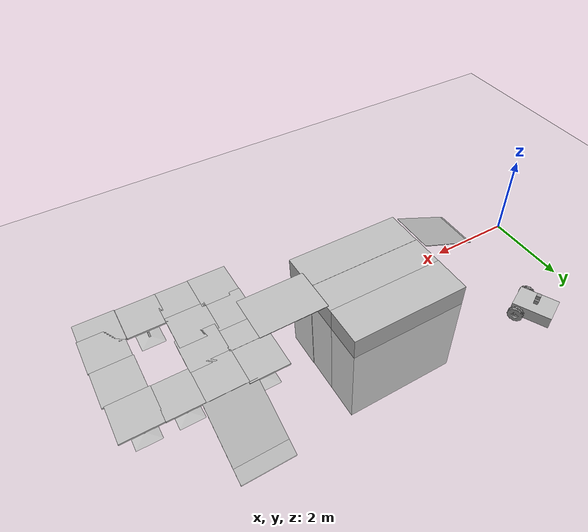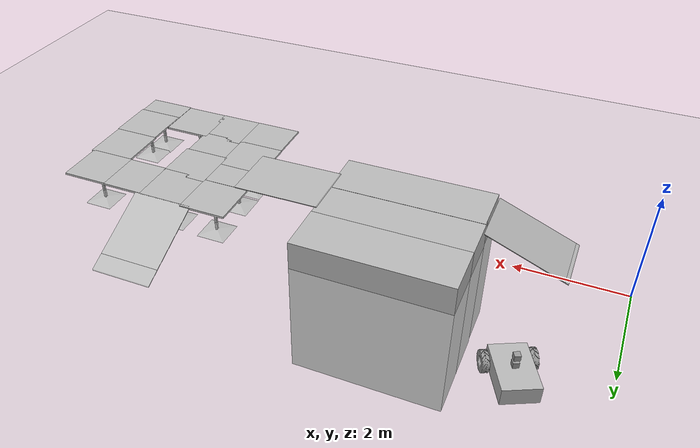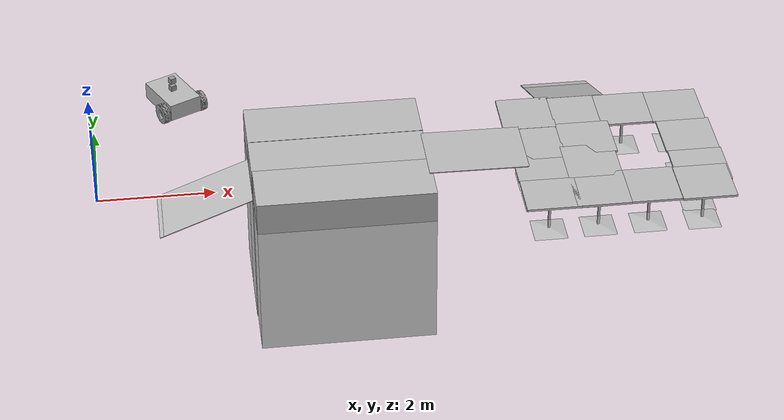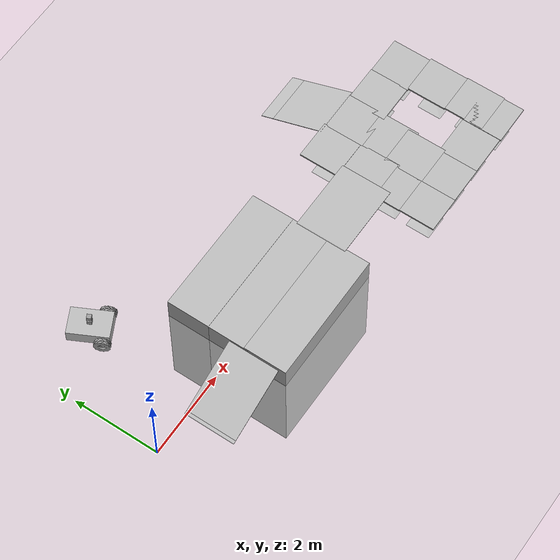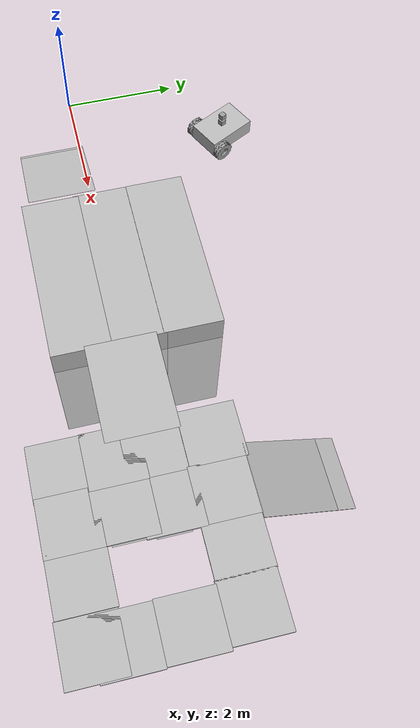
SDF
<sdf version="1.6">
 <world name="default">
  <model name="ground_plane">
   <static>1</static>
   <link name="link">
    <collision name="collision">
     <geometry><plane><normal>0 0 1</normal><size>100 100</size></plane></geometry>
     <surface>
      <contact><collide_bitmask>65535</collide_bitmask></contact>
      <friction><ode><mu>100</mu><mu2>50</mu2></ode></friction>
     </surface>
    </collision>
    <visual name="visual">
     <cast_shadows>0</cast_shadows>
     <geometry><plane><normal>0 0 1</normal><size>100 100</size></plane></geometry>
     <material>
      <script><uri>file://media/materials/scripts/gazebo.material</uri><name>Gazebo/Grey</name></script>
     </material>
    </visual>
   </link>
  </model>
  <light name="sun" type="directional">
   <pose>0 0 10 0 -0 0</pose>
   <diffuse>0.8 0.8 0.8 1</diffuse>
   <specular>0.2 0.2 0.2 1</specular>
   <attenuation>
    <range>1000</range>
    <constant>0.9</constant>
    <linear>0.01</linear>
    <quadratic>0.001</quadratic>
   </attenuation>
   <direction>-0.5 0.1 -0.9</direction>
  </light>
  <model name="bowser2">
   <pose>1.42905 2.6701 0.226477 7e-06 -0.004236 -1.10502</pose>
   <static>0</static>
   <link name="base_link">
    <inertial>
     <mass>10</mass>
     <inertia><ixx>0.3735</ixx><ixy>0</ixy><ixz>0</ixz><iyy>0.747</iyy><iyz>0</iyz><izz>0.9711</izz></inertia>
    </inertial>
    <collision name="collision"><geometry><box><size>0.9 0.6 0.3</size></box></geometry></collision>
    <visual name="visual"><geometry><box><size>0.9 0.6 0.3</size></box></geometry></visual>
    <collision name="caster_collision">
     <pose>-0.35 0 -0.15 0 -0 0</pose>
     <geometry><sphere><radius>0.075</radius></sphere></geometry>
     <surface><friction><ode><mu>0</mu><mu2>0</mu2><slip1>1</slip1><slip2>1</slip2></ode></friction></surface>
    </collision>
    <visual name="caster_visual">
     <pose>-0.35 0 -0.15 0 -0 0</pose>
     <geometry><sphere><radius>0.075</radius></sphere></geometry>
    </visual>
   </link>
   <link name="front_right_wheel">
    <pose>0.3 -0.37 -0.05 0 -0 0</pose>
    <inertial>
     <mass>2.6357</mass>
     <inertia>
      <ixx>0.0246688</ixx>
      <ixy>0</ixy>
      <ixz>0</ixz>
      <iyy>0.0246688</iyy>
      <iyz>0</iyz>
      <izz>0.0441058</izz>
     </inertia>
    </inertial>
    <collision name="front_right_wheel_collision">
     <pose>0 0 0 -1.5707 0 0</pose>
     <geometry><cylinder><radius>0.17775</radius><length>0.1143</length></cylinder></geometry>
     <surface>
      <friction><ode><mu>100000</mu><mu2>100000</mu2><slip1>0</slip1><slip2>0</slip2></ode></friction>
     </surface>
    </collision>
    <visual name="front_right_wheel">
     <pose>0 0 0 -3.14159 0 0</pose>
     <geometry><mesh><uri>model://husky/meshes/wheel.stl</uri></mesh></geometry>
     <material><script><name>Gazebo/Grey</name><uri>__default__</uri></script></material>
    </visual>
   </link>
   <joint name="front_right_joint" type="revolute">
    <parent>base_link</parent>
    <child>front_right_wheel</child>
    <axis>
     <xyz>0 1 0</xyz>
     <use_parent_model_frame>1</use_parent_model_frame>
     <limit><lower>-1e+16</lower><upper>1e+16</upper></limit>
     <dynamics><spring_reference>0</spring_reference><spring_stiffness>0</spring_stiffness></dynamics>
    </axis>
    <physics><ode><limit><cfm>0</cfm><erp>0.9</erp></limit></ode></physics>
   </joint>
   <link name="front_left_wheel">
    <pose>0.3 0.37 -0.05 0 -0 0</pose>
    <inertial>
     <mass>2.6357</mass>
     <inertia>
      <ixx>0.0246688</ixx>
      <ixy>0</ixy>
      <ixz>0</ixz>
      <iyy>0.0246688</iyy>
      <iyz>0</iyz>
      <izz>0.0441058</izz>
     </inertia>
    </inertial>
    <collision name="front_left_wheel_collision">
     <pose>0 0 0 -1.5707 0 0</pose>
     <geometry><cylinder><radius>0.17775</radius><length>0.1143</length></cylinder></geometry>
     <surface>
      <friction><ode><mu>100000</mu><mu2>100000</mu2><slip1>0</slip1><slip2>0</slip2></ode></friction>
     </surface>
    </collision>
    <visual name="front_left_wheel">
     <pose>0 0 0 -3.14159 0 0</pose>
     <geometry><mesh><uri>model://husky/meshes/wheel.stl</uri></mesh></geometry>
     <material><script><name>Gazebo/Grey</name><uri>__default__</uri></script></material>
    </visual>
   </link>
   <joint name="front_left_joint" type="revolute">
    <parent>base_link</parent>
    <child>front_left_wheel</child>
    <axis>
     <xyz>0 1 0</xyz>
     <use_parent_model_frame>1</use_parent_model_frame>
     <limit><lower>-1e+16</lower><upper>1e+16</upper></limit>
     <dynamics><spring_reference>0</spring_reference><spring_stiffness>0</spring_stiffness></dynamics>
    </axis>
    <physics><ode><limit><cfm>0</cfm><erp>0.9</erp></limit></ode></physics>
   </joint>
   <link name="imu_link">
    <visual name="imu_link_visual"><geometry><box><size>0.1 0.1 0.1</size></box></geometry></visual>
    <collision name="imu_link_collision"><geometry><box><size>0.1 0.1 0.1</size></box></geometry></collision>
    <sensor name="imu_sensor" type="imu">
     <always_on>1</always_on>
     <plugin name="imu_plugin" filename="libgazebo_ros_imu_sensor.so">
      <robotNamespace>bowser2</robotNamespace>
      <topicName>imu</topicName>
      <updateRateHZ>30</updateRateHZ>
      <frameName>imu_link</frameName>
      <initialOrientationAsReference>0</initialOrientationAsReference>
     </plugin>
    </sensor>
    <inertial>
     <inertia><ixx>1</ixx><ixy>0</ixy><ixz>0</ixz><iyy>1</iyy><iyz>0</iyz><izz>1</izz></inertia>
     <mass>1</mass>
    </inertial>
   </link>
   <joint name="bowser2/imu_joint" type="fixed"><parent>base_link</parent><child>imu_link</child></joint>
   <plugin name="diff_drive_controller" filename="libgazebo_ros_diff_drive.so">
    <robotNamespace>bowser2</robotNamespace>
    <leftJoint>front_left_joint</leftJoint>
    <rightJoint>front_right_joint</rightJoint>
    <wheelSeparation>0.74</wheelSeparation>
    <wheelDiameter>0.3555</wheelDiameter>
    <wheelTorque>20</wheelTorque>
    <odometrySource>world</odometrySource>
    <publishOdom>1</publishOdom>
    <updateRate>100</updateRate>
    <publishTf>1</publishTf>
    <publishOdomTF>1</publishOdomTF>
    <publishWheelTF>1</publishWheelTF>
    <odometryFrame>odom</odometryFrame>
    <robotBaseFrame>base_link</robotBaseFrame>
    <commandTopic>/cmd_vel</commandTopic>
    <odometryTopic>odom</odometryTopic>
   </plugin>
   <joint name="bowser2/camera_joint" type="fixed">
    <parent>base_link</parent>
    <child>camera_link</child>
    <axis>
     <xyz>1 0 0</xyz>
     <use_parent_model_frame>1</use_parent_model_frame>
     <limit><lower>-1e+16</lower><upper>1e+16</upper></limit>
    </axis>
   </joint>
   <link name="camera_link">
    <pose>0 0 0.35 0 -0 0</pose>
    <collision name="camera_collision">
     <pose>0 0 0.1 0 -0 0</pose>
     <geometry><box><size>0.1 0.1 0.1</size></box></geometry>
    </collision>
    <visual name="camera_visual">
     <geometry><box><size>0.1 0.1 0.1</size></box></geometry>
     <material><script><name>Gazebo/Grey</name><uri>__default__</uri></script></material>
    </visual>
    <sensor name="depth_sensor" type="depth">
     <always_on>0</always_on>
     <camera name="bowser2_dc">
      <horizontal_fov>1.57079</horizontal_fov>
      <image><width>640</width><height>480</height></image>
      <clip><near>0.5</near><far>20</far></clip>
      <distortion><k1>0</k1><k2>0</k2><k3>0</k3><p1>0</p1><p2>0</p2><center>0 0</center></distortion>
     </camera>
     <plugin name="bowser2_camera_plugin" filename="libgazebo_ros_depth_camera.so">
      <robotNamespace>bowser2</robotNamespace>
      <always_on>1</always_on>
      <updateRate>0.0</updateRate>
      <cameraName>bowser2_dc</cameraName>
      <baseline>0.05</baseline>
      <pointCloudCutoff>0.05</pointCloudCutoff>
      <pointCloudCutoffMax>20</pointCloudCutoffMax>
      <imageTopicName>image/image</imageTopicName>
      <cameraInfoTopicName>image/camera_info</cameraInfoTopicName>
      <depthImageTopicName>depth/image</depthImageTopicName>
      <depthImageCameraInfoTopicName>depth/camera_info</depthImageCameraInfoTopicName>
      <pointCloudTopicName>depth/points</pointCloudTopicName>
      <frameName>camera_link</frameName>
      <distortionK1>0.0</distortionK1>
      <distortionK2>0.0</distortionK2>
      <distortionK3>0.0</distortionK3>
      <distortionT1>0.0</distortionT1>
      <distortionT2>0.0</distortionT2>
     </plugin>
    </sensor>
    <inertial>
     <inertia><ixx>1</ixx><ixy>0</ixy><ixz>0</ixz><iyy>1</iyy><iyz>0</iyz><izz>1</izz></inertia>
     <mass>1</mass>
    </inertial>
   </link>
   <joint name="bowser2/lidar_joint" type="fixed">
    <parent>base_link</parent>
    <child>lidar_link</child>
    <axis>
     <xyz>0 1 0</xyz>
     <use_parent_model_frame>1</use_parent_model_frame>
     <limit><lower>-1e+16</lower><upper>1e+16</upper></limit>
    </axis>
   </joint>
   <link name="lidar_link">
    <pose>0 0 0.2 0 -0 0</pose>
    <collision name="lidar_collision">
     <pose>0 0 0.1 0 -0 0</pose>
     <geometry><box><size>0.1 0.1 0.1</size></box></geometry>
    </collision>
    <visual name="lidar_visual">
     <geometry><box><size>0.1 0.1 0.1</size></box></geometry>
     <material><script><name>Gazebo/Grey</name><uri>__default__</uri></script></material>
    </visual>
    <sensor name="laser_sensor" type="ray">
     <ray>
      <scan>
       <horizontal>
        <samples>256</samples>
        <resolution>1</resolution>
        <min_angle>-1.5707</min_angle>
        <max_angle>1.5707</max_angle>
       </horizontal>
       <vertical><samples>1</samples><min_angle>0</min_angle><max_angle>0</max_angle></vertical>
      </scan>
      <range><min>0.08</min><max>30</max><resolution>0.01</resolution></range>
     </ray>
     <visualize>0</visualize>
     <plugin name="laser_plugin" filename="libgazebo_ros_laser.so">
      <robotNamespace>bowser2</robotNamespace>
      <updateRate>30</updateRate>
      <topicName>/scan</topicName>
      <frameName>lidar_link</frameName>
      <gaussianNoise>0.01</gaussianNoise>
     </plugin>
    </sensor>
    <inertial>
     <inertia><ixx>1</ixx><ixy>0</ixy><ixz>0</ixz><iyy>1</iyy><iyz>0</iyz><izz>1</izz></inertia>
     <mass>1</mass>
    </inertial>
   </link>
  </model>
  <gravity>0 0 -9.8</gravity>
  <magnetic_field>6e-06 2.3e-05 -4.2e-05</magnetic_field>
  <atmosphere type="adiabatic"/>
  <physics name="default_physics" default="0" type="ode">
   <max_step_size>0.001</max_step_size>
   <real_time_factor>1</real_time_factor>
   <real_time_update_rate>1000</real_time_update_rate>
  </physics>
  <scene><ambient>0.4 0.4 0.4 1</ambient><background>0.7 0.7 0.7 1</background><shadows>1</shadows></scene>
  <audio><device>default</device></audio>
  <spherical_coordinates>
   <surface_model>EARTH_WGS84</surface_model>
   <latitude_deg>0</latitude_deg>
   <longitude_deg>0</longitude_deg>
   <elevation>0</elevation>
   <heading_deg>0</heading_deg>
  </spherical_coordinates>
  <model name="nist_simple_ramp_120">
   <static>1</static>
   <link name="nist_simple_ramp_120_link">
    <collision name="collision">
     <geometry>
      <mesh><uri>model://nist_simple_ramp_120/meshes/nist_simple_ramp_120.dae</uri><scale>1 1 1</scale></mesh>
     </geometry>
    </collision>
    <visual name="visual">
     <geometry>
      <mesh><uri>model://nist_simple_ramp_120/meshes/nist_simple_ramp_120.dae</uri><scale>1 1 1</scale></mesh>
     </geometry>
    </visual>
   </link>
   <pose>1.54906 -0.526813 -0.284938 -0.403431 -0 -1.5708</pose>
  </model>
  <model name="brick_box_3x1x3">
   <static>1</static>
   <link name="chassis">
    <pose>0 0 1.5 0 -0 0</pose>
    <collision name="collision"><geometry><box><size>3 1 3</size></box></geometry></collision>
    <visual name="visual">
     <geometry><mesh><uri>model://brick_box_3x1x3/meshes/simple_box.dae</uri><scale>3 1 3</scale></mesh></geometry>
     <material>
      <script>
       <uri>model://brick_box_3x1x3/materials/scripts</uri>
       <uri>model://brick_box_3x1x3/materials/textures</uri>
       <name>BrickBox/Diffuse</name>
      </script>
     </material>
    </visual>
   </link>
   <pose>4.10779 -0.755492 -2.43752 0 -0 0</pose>
  </model>
  <model name="brick_box_3x1x3_clone">
   <static>1</static>
   <link name="chassis">
    <pose>0 0 1.5 0 -0 0</pose>
    <collision name="collision"><geometry><box><size>3 1 3</size></box></geometry></collision>
    <visual name="visual">
     <geometry><mesh><uri>model://brick_box_3x1x3/meshes/simple_box.dae</uri><scale>3 1 3</scale></mesh></geometry>
     <material>
      <script>
       <uri>model://brick_box_3x1x3/materials/scripts</uri>
       <uri>model://brick_box_3x1x3/materials/textures</uri>
       <name>BrickBox/Diffuse</name>
      </script>
     </material>
    </visual>
   </link>
   <pose>4.09649 0.153266 -2.44103 0 -0 0</pose>
  </model>
  <model name="brick_box_3x1x3_clone_0">
   <static>1</static>
   <link name="chassis">
    <pose>0 0 1.5 0 -0 0</pose>
    <collision name="collision"><geometry><box><size>3 1 3</size></box></geometry></collision>
    <visual name="visual">
     <geometry><mesh><uri>model://brick_box_3x1x3/meshes/simple_box.dae</uri><scale>3 1 3</scale></mesh></geometry>
     <material>
      <script>
       <uri>model://brick_box_3x1x3/materials/scripts</uri>
       <uri>model://brick_box_3x1x3/materials/textures</uri>
       <name>BrickBox/Diffuse</name>
      </script>
     </material>
    </visual>
   </link>
   <pose>4.09645 1.09558 -2.43589 0 -0 0</pose>
  </model>
  <model name="nist_simple_ramp_120_clone">
   <static>1</static>
   <link name="nist_simple_ramp_120_link">
    <collision name="collision">
     <geometry>
      <mesh><uri>model://nist_simple_ramp_120/meshes/nist_simple_ramp_120.dae</uri><scale>1 1 1</scale></mesh>
     </geometry>
    </collision>
    <visual name="visual">
     <geometry>
      <mesh><uri>model://nist_simple_ramp_120/meshes/nist_simple_ramp_120.dae</uri><scale>1 1 1</scale></mesh>
     </geometry>
    </visual>
   </link>
   <pose>5.9622 -0.113005 0.152024 -0.792748 -0 -1.5708</pose>
  </model>
  <model name="cafe_table">
   <static>1</static>
   <link name="link">
    <collision name="surface">
     <pose>0 0 0.755 0 -0 0</pose>
     <geometry><box><size>0.913 0.913 0.04</size></box></geometry>
    </collision>
    <collision name="column">
     <pose>0 0 0.37 0 -0 0</pose>
     <geometry><box><size>0.042 0.042 0.74</size></box></geometry>
    </collision>
    <collision name="base">
     <pose>0 0 0.02 0 -0 0</pose>
     <geometry><box><size>0.56 0.56 0.04</size></box></geometry>
    </collision>
    <visual name="visual">
     <geometry><mesh><uri>model://cafe_table/meshes/cafe_table.dae</uri></mesh></geometry>
    </visual>
   </link>
   <pose>7.43102 0.907168 -0.228006 0 -0 0</pose>
  </model>
  <model name="cafe_table_clone">
   <static>1</static>
   <link name="link">
    <collision name="surface">
     <pose>0 0 0.755 0 -0 0</pose>
     <geometry><box><size>0.913 0.913 0.04</size></box></geometry>
    </collision>
    <collision name="column">
     <pose>0 0 0.37 0 -0 0</pose>
     <geometry><box><size>0.042 0.042 0.74</size></box></geometry>
    </collision>
    <collision name="base">
     <pose>0 0 0.02 0 -0 0</pose>
     <geometry><box><size>0.56 0.56 0.04</size></box></geometry>
    </collision>
    <visual name="visual">
     <geometry><mesh><uri>model://cafe_table/meshes/cafe_table.dae</uri></mesh></geometry>
    </visual>
   </link>
   <pose>7.44248 -0.009861 -0.228006 0 -0 0</pose>
  </model>
  <model name="cafe_table_clone_0">
   <static>1</static>
   <link name="link">
    <collision name="surface">
     <pose>0 0 0.755 0 -0 0</pose>
     <geometry><box><size>0.913 0.913 0.04</size></box></geometry>
    </collision>
    <collision name="column">
     <pose>0 0 0.37 0 -0 0</pose>
     <geometry><box><size>0.042 0.042 0.74</size></box></geometry>
    </collision>
    <collision name="base">
     <pose>0 0 0.02 0 -0 0</pose>
     <geometry><box><size>0.56 0.56 0.04</size></box></geometry>
    </collision>
    <visual name="visual">
     <geometry><mesh><uri>model://cafe_table/meshes/cafe_table.dae</uri></mesh></geometry>
    </visual>
   </link>
   <pose>7.45183 -0.611732 -0.228006 0 -0 0</pose>
  </model>
  <model name="cafe_table_clone_1">
   <static>1</static>
   <link name="link">
    <collision name="surface">
     <pose>0 0 0.755 0 -0 0</pose>
     <geometry><box><size>0.913 0.913 0.04</size></box></geometry>
    </collision>
    <collision name="column">
     <pose>0 0 0.37 0 -0 0</pose>
     <geometry><box><size>0.042 0.042 0.74</size></box></geometry>
    </collision>
    <collision name="base">
     <pose>0 0 0.02 0 -0 0</pose>
     <geometry><box><size>0.56 0.56 0.04</size></box></geometry>
    </collision>
    <visual name="visual">
     <geometry><mesh><uri>model://cafe_table/meshes/cafe_table.dae</uri></mesh></geometry>
    </visual>
   </link>
   <pose>8.32382 0.869333 -0.228006 0 -0 0</pose>
  </model>
  <model name="cafe_table_clone_2">
   <static>1</static>
   <link name="link">
    <collision name="surface">
     <pose>0 0 0.755 0 -0 0</pose>
     <geometry><box><size>0.913 0.913 0.04</size></box></geometry>
    </collision>
    <collision name="column">
     <pose>0 0 0.37 0 -0 0</pose>
     <geometry><box><size>0.042 0.042 0.74</size></box></geometry>
    </collision>
    <collision name="base">
     <pose>0 0 0.02 0 -0 0</pose>
     <geometry><box><size>0.56 0.56 0.04</size></box></geometry>
    </collision>
    <visual name="visual">
     <geometry><mesh><uri>model://cafe_table/meshes/cafe_table.dae</uri></mesh></geometry>
    </visual>
   </link>
   <pose>8.33401 0.060985 -0.228006 0 -0 0</pose>
  </model>
  <model name="cafe_table_clone_3">
   <static>1</static>
   <link name="link">
    <collision name="surface">
     <pose>0 0 0.755 0 -0 0</pose>
     <geometry><box><size>0.913 0.913 0.04</size></box></geometry>
    </collision>
    <collision name="column">
     <pose>0 0 0.37 0 -0 0</pose>
     <geometry><box><size>0.042 0.042 0.74</size></box></geometry>
    </collision>
    <collision name="base">
     <pose>0 0 0.02 0 -0 0</pose>
     <geometry><box><size>0.56 0.56 0.04</size></box></geometry>
    </collision>
    <visual name="visual">
     <geometry><mesh><uri>model://cafe_table/meshes/cafe_table.dae</uri></mesh></geometry>
    </visual>
   </link>
   <pose>8.29419 -0.622649 -0.228006 0 -0 0</pose>
  </model>
  <model name="cafe_table_clone_4">
   <static>1</static>
   <link name="link">
    <collision name="surface">
     <pose>0 0 0.755 0 -0 0</pose>
     <geometry><box><size>0.913 0.913 0.04</size></box></geometry>
    </collision>
    <collision name="column">
     <pose>0 0 0.37 0 -0 0</pose>
     <geometry><box><size>0.042 0.042 0.74</size></box></geometry>
    </collision>
    <collision name="base">
     <pose>0 0 0.02 0 -0 0</pose>
     <geometry><box><size>0.56 0.56 0.04</size></box></geometry>
    </collision>
    <visual name="visual">
     <geometry><mesh><uri>model://cafe_table/meshes/cafe_table.dae</uri></mesh></geometry>
    </visual>
   </link>
   <pose>7.46019 -1.43262 -0.228006 0 -0 0</pose>
  </model>
  <model name="cafe_table_clone_5">
   <static>1</static>
   <link name="link">
    <collision name="surface">
     <pose>0 0 0.755 0 -0 0</pose>
     <geometry><box><size>0.913 0.913 0.04</size></box></geometry>
    </collision>
    <collision name="column">
     <pose>0 0 0.37 0 -0 0</pose>
     <geometry><box><size>0.042 0.042 0.74</size></box></geometry>
    </collision>
    <collision name="base">
     <pose>0 0 0.02 0 -0 0</pose>
     <geometry><box><size>0.56 0.56 0.04</size></box></geometry>
    </collision>
    <visual name="visual">
     <geometry><mesh><uri>model://cafe_table/meshes/cafe_table.dae</uri></mesh></geometry>
    </visual>
   </link>
   <pose>8.29709 -1.4283 -0.228006 0 -0 0</pose>
  </model>
  <model name="cafe_table_clone_6">
   <static>1</static>
   <link name="link">
    <collision name="surface">
     <pose>0 0 0.755 0 -0 0</pose>
     <geometry><box><size>0.913 0.913 0.04</size></box></geometry>
    </collision>
    <collision name="column">
     <pose>0 0 0.37 0 -0 0</pose>
     <geometry><box><size>0.042 0.042 0.74</size></box></geometry>
    </collision>
    <collision name="base">
     <pose>0 0 0.02 0 -0 0</pose>
     <geometry><box><size>0.56 0.56 0.04</size></box></geometry>
    </collision>
    <visual name="visual">
     <geometry><mesh><uri>model://cafe_table/meshes/cafe_table.dae</uri></mesh></geometry>
    </visual>
   </link>
   <pose>9.12659 0.85354 -0.228006 0 -0 0</pose>
  </model>
  <model name="cafe_table_clone_7">
   <static>1</static>
   <link name="link">
    <collision name="surface">
     <pose>0 0 0.755 0 -0 0</pose>
     <geometry><box><size>0.913 0.913 0.04</size></box></geometry>
    </collision>
    <collision name="column">
     <pose>0 0 0.37 0 -0 0</pose>
     <geometry><box><size>0.042 0.042 0.74</size></box></geometry>
    </collision>
    <collision name="base">
     <pose>0 0 0.02 0 -0 0</pose>
     <geometry><box><size>0.56 0.56 0.04</size></box></geometry>
    </collision>
    <visual name="visual">
     <geometry><mesh><uri>model://cafe_table/meshes/cafe_table.dae</uri></mesh></geometry>
    </visual>
   </link>
   <pose>9.14288 -1.42416 -0.228006 0 -0 0</pose>
  </model>
  <model name="cafe_table_clone_8">
   <static>1</static>
   <link name="link">
    <collision name="surface">
     <pose>0 0 0.755 0 -0 0</pose>
     <geometry><box><size>0.913 0.913 0.04</size></box></geometry>
    </collision>
    <collision name="column">
     <pose>0 0 0.37 0 -0 0</pose>
     <geometry><box><size>0.042 0.042 0.74</size></box></geometry>
    </collision>
    <collision name="base">
     <pose>0 0 0.02 0 -0 0</pose>
     <geometry><box><size>0.56 0.56 0.04</size></box></geometry>
    </collision>
    <visual name="visual">
     <geometry><mesh><uri>model://cafe_table/meshes/cafe_table.dae</uri></mesh></geometry>
    </visual>
   </link>
   <pose>10.0235 0.843563 -0.228006 0 -0 0</pose>
  </model>
  <model name="cafe_table_clone_9">
   <static>1</static>
   <link name="link">
    <collision name="surface">
     <pose>0 0 0.755 0 -0 0</pose>
     <geometry><box><size>0.913 0.913 0.04</size></box></geometry>
    </collision>
    <collision name="column">
     <pose>0 0 0.37 0 -0 0</pose>
     <geometry><box><size>0.042 0.042 0.74</size></box></geometry>
    </collision>
    <collision name="base">
     <pose>0 0 0.02 0 -0 0</pose>
     <geometry><box><size>0.56 0.56 0.04</size></box></geometry>
    </collision>
    <visual name="visual">
     <geometry><mesh><uri>model://cafe_table/meshes/cafe_table.dae</uri></mesh></geometry>
    </visual>
   </link>
   <pose>10.0688 -0.050786 -0.228006 0 -0 0</pose>
  </model>
  <model name="cafe_table_clone_10">
   <static>1</static>
   <link name="link">
    <collision name="surface">
     <pose>0 0 0.755 0 -0 0</pose>
     <geometry><box><size>0.913 0.913 0.04</size></box></geometry>
    </collision>
    <collision name="column">
     <pose>0 0 0.37 0 -0 0</pose>
     <geometry><box><size>0.042 0.042 0.74</size></box></geometry>
    </collision>
    <collision name="base">
     <pose>0 0 0.02 0 -0 0</pose>
     <geometry><box><size>0.56 0.56 0.04</size></box></geometry>
    </collision>
    <visual name="visual">
     <geometry><mesh><uri>model://cafe_table/meshes/cafe_table.dae</uri></mesh></geometry>
    </visual>
   </link>
   <pose>10.0851 -0.964484 -0.228006 0 -0 0</pose>
  </model>
  <model name="cafe_table_clone_11">
   <static>1</static>
   <link name="link">
    <collision name="surface">
     <pose>0 0 0.755 0 -0 0</pose>
     <geometry><box><size>0.913 0.913 0.04</size></box></geometry>
    </collision>
    <collision name="column">
     <pose>0 0 0.37 0 -0 0</pose>
     <geometry><box><size>0.042 0.042 0.74</size></box></geometry>
    </collision>
    <collision name="base">
     <pose>0 0 0.02 0 -0 0</pose>
     <geometry><box><size>0.56 0.56 0.04</size></box></geometry>
    </collision>
    <visual name="visual">
     <geometry><mesh><uri>model://cafe_table/meshes/cafe_table.dae</uri></mesh></geometry>
    </visual>
   </link>
   <pose>10.0637 -1.44226 -0.228006 0 -0 0</pose>
  </model>
  <model name="nist_simple_ramp_120_clone_0">
   <static>1</static>
   <link name="nist_simple_ramp_120_link">
    <collision name="collision">
     <geometry>
      <mesh><uri>model://nist_simple_ramp_120/meshes/nist_simple_ramp_120.dae</uri><scale>1 1 1</scale></mesh>
     </geometry>
    </collision>
    <visual name="visual">
     <geometry>
      <mesh><uri>model://nist_simple_ramp_120/meshes/nist_simple_ramp_120.dae</uri><scale>1 1 1</scale></mesh>
     </geometry>
    </visual>
   </link>
   <pose>8.27234 2.28909 -0.372423 -0.354159 -0 3.14159</pose>
  </model>
 </world>
</sdf>
